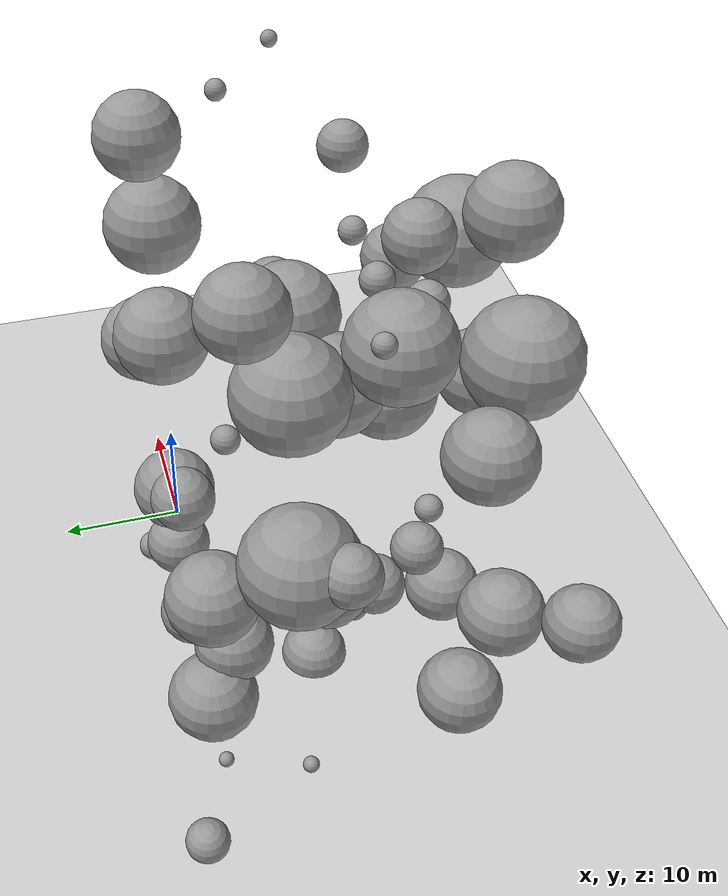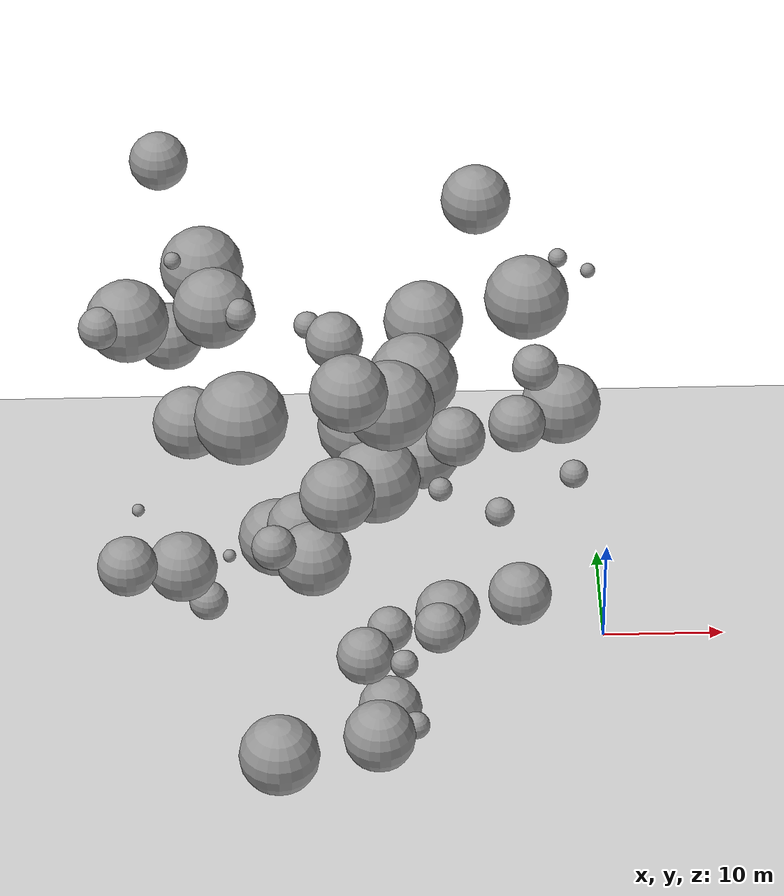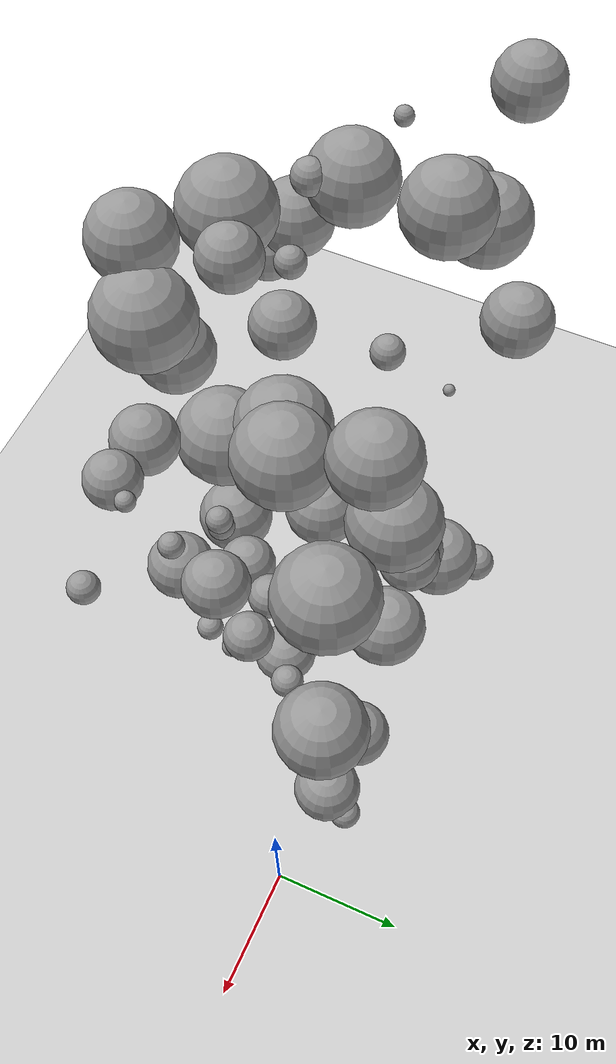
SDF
<sdf version="1.7">
 <world name="default">
  <model name="ground_plane">
   <static>1</static>
   <link name="link">
    <collision name="collision">
     <geometry><plane><normal>0 0 1</normal><size>100 100</size></plane></geometry>
     <surface>
      <contact><collide_bitmask>65535</collide_bitmask></contact>
      <friction><ode><mu>100</mu><mu2>50</mu2></ode></friction>
     </surface>
    </collision>
    <visual name="visual">
     <cast_shadows>0</cast_shadows>
     <geometry><plane><normal>0 0 1</normal><size>100 100</size></plane></geometry>
     <material>
      <script><uri>file://media/materials/scripts/gazebo.material</uri><name>Gazebo/Grey</name></script>
     </material>
    </visual>
   </link>
  </model>
  <model name="sphere_3">
   <static>1</static>
   <pose>-4 2 24 0 0 0</pose>
   <link name="link">
    <inertial>
     <mass>13485.373694115648</mass>
     <inertia>
      <ixx>54589.09502546419</ixx>
      <iyy>54589.09502546419</iyy>
      <izz>54589.09502546419</izz>
      <ixy>0</ixy>
      <ixz>0</ixz>
      <iyz>0</iyz>
     </inertia>
    </inertial>
    <collision name="collision">
     <geometry><sphere><radius>3.1812035528028293</radius></sphere></geometry>
    </collision>
    <visual name="visual">
     <geometry><sphere><radius>3.1812035528028293</radius></sphere></geometry>
     <material>
      <script><uri>file://media/materials/scripts/gazebo.material</uri><name>Gazebo/Grey</name></script>
     </material>
    </visual>
   </link>
  </model>
  <model name="sphere_6">
   <static>1</static>
   <pose>-16 -6 34 0 0 0</pose>
   <link name="link">
    <inertial>
     <mass>17364.775495447677</mass>
     <inertia>
      <ixx>83198.63603074141</ixx>
      <iyy>83198.63603074141</iyy>
      <izz>83198.63603074141</izz>
      <ixy>0</ixy>
      <ixz>0</ixz>
      <iyz>0</iyz>
     </inertia>
    </inertial>
    <collision name="collision">
     <geometry><sphere><radius>3.460935624013823</radius></sphere></geometry>
    </collision>
    <visual name="visual">
     <geometry><sphere><radius>3.460935624013823</radius></sphere></geometry>
     <material>
      <script><uri>file://media/materials/scripts/gazebo.material</uri><name>Gazebo/Grey</name></script>
     </material>
    </visual>
   </link>
  </model>
  <model name="sphere_7">
   <static>1</static>
   <pose>-14 -10 26 0 0 0</pose>
   <link name="link">
    <inertial>
     <mass>341.6740746308729</mass>
     <inertia>
      <ixx>119.31296269159577</ixx>
      <iyy>119.31296269159577</iyy>
      <izz>119.31296269159577</izz>
      <ixy>0</ixy>
      <ixz>0</ixz>
      <iyz>0</iyz>
     </inertia>
    </inertial>
    <collision name="collision">
     <geometry><sphere><radius>0.9343461617193105</radius></sphere></geometry>
    </collision>
    <visual name="visual">
     <geometry><sphere><radius>0.9343461617193105</radius></sphere></geometry>
     <material>
      <script><uri>file://media/materials/scripts/gazebo.material</uri><name>Gazebo/Grey</name></script>
     </material>
    </visual>
   </link>
  </model>
  <model name="sphere_9">
   <static>1</static>
   <pose>-4 -14 31 0 0 0</pose>
   <link name="link">
    <inertial>
     <mass>518.8254719904191</mass>
     <inertia>
      <ixx>239.3516366783105</ixx>
      <iyy>239.3516366783105</iyy>
      <izz>239.3516366783105</izz>
      <ixy>0</ixy>
      <ixz>0</ixz>
      <iyz>0</iyz>
     </inertia>
    </inertial>
    <collision name="collision">
     <geometry><sphere><radius>1.0739339211712031</radius></sphere></geometry>
    </collision>
    <visual name="visual">
     <geometry><sphere><radius>1.0739339211712031</radius></sphere></geometry>
     <material>
      <script><uri>file://media/materials/scripts/gazebo.material</uri><name>Gazebo/Grey</name></script>
     </material>
    </visual>
   </link>
  </model>
  <model name="sphere_10">
   <static>1</static>
   <pose>-7 1 36 0 0 0</pose>
   <link name="link">
    <inertial>
     <mass>15034.051911871826</mass>
     <inertia>
      <ixx>65432.62261102709</ixx>
      <iyy>65432.62261102709</iyy>
      <izz>65432.62261102709</izz>
      <ixy>0</ixy>
      <ixz>0</ixz>
      <iyz>0</iyz>
     </inertia>
    </inertial>
    <collision name="collision">
     <geometry><sphere><radius>3.2985961321861437</radius></sphere></geometry>
    </collision>
    <visual name="visual">
     <geometry><sphere><radius>3.2985961321861437</radius></sphere></geometry>
     <material>
      <script><uri>file://media/materials/scripts/gazebo.material</uri><name>Gazebo/Grey</name></script>
     </material>
    </visual>
   </link>
  </model>
  <model name="sphere_27">
   <static>1</static>
   <pose>-29 -16 39 0 0 0</pose>
   <link name="link">
    <inertial>
     <mass>17865.77479721656</mass>
     <inertia>
      <ixx>87237.66055250104</ixx>
      <iyy>87237.66055250104</iyy>
      <izz>87237.66055250104</izz>
      <ixy>0</ixy>
      <ixz>0</ixz>
      <iyz>0</iyz>
     </inertia>
    </inertial>
    <collision name="collision">
     <geometry><sphere><radius>3.493904917503813</radius></sphere></geometry>
    </collision>
    <visual name="visual">
     <geometry><sphere><radius>3.493904917503813</radius></sphere></geometry>
     <material>
      <script><uri>file://media/materials/scripts/gazebo.material</uri><name>Gazebo/Grey</name></script>
     </material>
    </visual>
   </link>
  </model>
  <model name="sphere_42">
   <static>1</static>
   <pose>-27 2 10 0 0 0</pose>
   <link name="link">
    <inertial>
     <mass>13778.366554385564</mass>
     <inertia>
      <ixx>56580.112817841626</ixx>
      <iyy>56580.112817841626</iyy>
      <izz>56580.112817841626</izz>
      <ixy>0</ixy>
      <ixz>0</ixz>
      <iyz>0</iyz>
     </inertia>
    </inertial>
    <collision name="collision">
     <geometry><sphere><radius>3.2040777173975967</radius></sphere></geometry>
    </collision>
    <visual name="visual">
     <geometry><sphere><radius>3.2040777173975967</radius></sphere></geometry>
     <material>
      <script><uri>file://media/materials/scripts/gazebo.material</uri><name>Gazebo/Grey</name></script>
     </material>
    </visual>
   </link>
  </model>
  <model name="sphere_60">
   <static>1</static>
   <pose>-31 -5 28 0 0 0</pose>
   <link name="link">
    <inertial>
     <mass>951.9786147179389</mass>
     <inertia>
      <ixx>658.2328803923649</ixx>
      <iyy>658.2328803923649</iyy>
      <izz>658.2328803923649</izz>
      <ixy>0</ixy>
      <ixz>0</ixz>
      <iyz>0</iyz>
     </inertia>
    </inertial>
    <collision name="collision">
     <geometry><sphere><radius>1.3147591271384855</radius></sphere></geometry>
    </collision>
    <visual name="visual">
     <geometry><sphere><radius>1.3147591271384855</radius></sphere></geometry>
     <material>
      <script><uri>file://media/materials/scripts/gazebo.material</uri><name>Gazebo/Grey</name></script>
     </material>
    </visual>
   </link>
  </model>
  <model name="sphere_65">
   <static>1</static>
   <pose>-40 -3 37 0 0 0</pose>
   <link name="link">
    <inertial>
     <mass>1894.5218783479238</mass>
     <inertia>
      <ixx>2072.5274597550997</ixx>
      <iyy>2072.5274597550997</iyy>
      <izz>2072.5274597550997</izz>
      <ixy>0</ixy>
      <ixz>0</ixz>
      <iyz>0</iyz>
     </inertia>
    </inertial>
    <collision name="collision">
     <geometry><sphere><radius>1.6537518329684593</radius></sphere></geometry>
    </collision>
    <visual name="visual">
     <geometry><sphere><radius>1.6537518329684593</radius></sphere></geometry>
     <material>
      <script><uri>file://media/materials/scripts/gazebo.material</uri><name>Gazebo/Grey</name></script>
     </material>
    </visual>
   </link>
  </model>
  <model name="sphere_68">
   <static>1</static>
   <pose>-17 -17 14 0 0 0</pose>
   <link name="link">
    <inertial>
     <mass>542.3213156279331</mass>
     <inertia>
      <ixx>257.6887007942612</ixx>
      <iyy>257.6887007942612</iyy>
      <izz>257.6887007942612</izz>
      <ixy>0</ixy>
      <ixz>0</ixz>
      <iyz>0</iyz>
     </inertia>
    </inertial>
    <collision name="collision">
     <geometry><sphere><radius>1.089906782111546</radius></sphere></geometry>
    </collision>
    <visual name="visual">
     <geometry><sphere><radius>1.089906782111546</radius></sphere></geometry>
     <material>
      <script><uri>file://media/materials/scripts/gazebo.material</uri><name>Gazebo/Grey</name></script>
     </material>
    </visual>
   </link>
  </model>
  <model name="sphere_74">
   <static>1</static>
   <pose>-13 1 2 0 0 0</pose>
   <link name="link">
    <inertial>
     <mass>8404.9842161421</mass>
     <inertia>
      <ixx>24825.37145676448</ixx>
      <iyy>24825.37145676448</iyy>
      <izz>24825.37145676448</izz>
      <ixy>0</ixy>
      <ixz>0</ixz>
      <iyz>0</iyz>
     </inertia>
    </inertial>
    <collision name="collision">
     <geometry><sphere><radius>2.7173740953435903</radius></sphere></geometry>
    </collision>
    <visual name="visual">
     <geometry><sphere><radius>2.7173740953435903</radius></sphere></geometry>
     <material>
      <script><uri>file://media/materials/scripts/gazebo.material</uri><name>Gazebo/Grey</name></script>
     </material>
    </visual>
   </link>
  </model>
  <model name="sphere_80">
   <static>1</static>
   <pose>-3 -8 46 0 0 0</pose>
   <link name="link">
    <inertial>
     <mass>69.99975427377015</mass>
     <inertia>
      <ixx>8.494968593391015</ixx>
      <iyy>8.494968593391015</iyy>
      <izz>8.494968593391015</izz>
      <ixy>0</ixy>
      <ixz>0</ixz>
      <iyz>0</iyz>
     </inertia>
    </inertial>
    <collision name="collision">
     <geometry><sphere><radius>0.5508110388333418</radius></sphere></geometry>
    </collision>
    <visual name="visual">
     <geometry><sphere><radius>0.5508110388333418</radius></sphere></geometry>
     <material>
      <script><uri>file://media/materials/scripts/gazebo.material</uri><name>Gazebo/Grey</name></script>
     </material>
    </visual>
   </link>
  </model>
  <model name="sphere_86">
   <static>1</static>
   <pose>-31 2 8 0 0 0</pose>
   <link name="link">
    <inertial>
     <mass>63.89077766509573</mass>
     <inertia>
      <ixx>7.2956592601255315</ixx>
      <iyy>7.2956592601255315</iyy>
      <izz>7.2956592601255315</izz>
      <ixy>0</ixy>
      <ixz>0</ixz>
      <iyz>0</iyz>
     </inertia>
    </inertial>
    <collision name="collision">
     <geometry><sphere><radius>0.534297556873202</radius></sphere></geometry>
    </collision>
    <visual name="visual">
     <geometry><sphere><radius>0.534297556873202</radius></sphere></geometry>
     <material>
      <script><uri>file://media/materials/scripts/gazebo.material</uri><name>Gazebo/Grey</name></script>
     </material>
    </visual>
   </link>
  </model>
  <model name="sphere_97">
   <static>1</static>
   <pose>-21 -18 43 0 0 0</pose>
   <link name="link">
    <inertial>
     <mass>10201.690682062408</mass>
     <inertia>
      <ixx>34286.34342741288</ixx>
      <iyy>34286.34342741288</iyy>
      <izz>34286.34342741288</izz>
      <ixy>0</ixy>
      <ixz>0</ixz>
      <iyz>0</iyz>
     </inertia>
    </inertial>
    <collision name="collision">
     <geometry><sphere><radius>2.8986415555667118</radius></sphere></geometry>
    </collision>
    <visual name="visual">
     <geometry><sphere><radius>2.8986415555667118</radius></sphere></geometry>
     <material>
      <script><uri>file://media/materials/scripts/gazebo.material</uri><name>Gazebo/Grey</name></script>
     </material>
    </visual>
   </link>
  </model>
  <model name="sphere_108">
   <static>1</static>
   <pose>-27 -17 4 0 0 0</pose>
   <link name="link">
    <inertial>
     <mass>14603.903131116624</mass>
     <inertia>
      <ixx>62342.25268442022</ixx>
      <iyy>62342.25268442022</iyy>
      <izz>62342.25268442022</izz>
      <ixy>0</ixy>
      <ixz>0</ixz>
      <iyz>0</iyz>
     </inertia>
    </inertial>
    <collision name="collision">
     <geometry><sphere><radius>3.266831827411993</radius></sphere></geometry>
    </collision>
    <visual name="visual">
     <geometry><sphere><radius>3.266831827411993</radius></sphere></geometry>
     <material>
      <script><uri>file://media/materials/scripts/gazebo.material</uri><name>Gazebo/Grey</name></script>
     </material>
    </visual>
   </link>
  </model>
  <model name="sphere_109">
   <static>1</static>
   <pose>-22 -17 32 0 0 0</pose>
   <link name="link">
    <inertial>
     <mass>9811.57003619049</mass>
     <inertia>
      <ixx>32129.090525636348</ixx>
      <iyy>32129.090525636348</iyy>
      <izz>32129.090525636348</izz>
      <ixy>0</ixy>
      <ixz>0</ixz>
      <iyz>0</iyz>
     </inertia>
    </inertial>
    <collision name="collision">
     <geometry><sphere><radius>2.8612115289157787</radius></sphere></geometry>
    </collision>
    <visual name="visual">
     <geometry><sphere><radius>2.8612115289157787</radius></sphere></geometry>
     <material>
      <script><uri>file://media/materials/scripts/gazebo.material</uri><name>Gazebo/Grey</name></script>
     </material>
    </visual>
   </link>
  </model>
  <model name="sphere_119">
   <static>1</static>
   <pose>-27 -12 22 0 0 0</pose>
   <link name="link">
    <inertial>
     <mass>2251.98447438753</mass>
     <inertia>
      <ixx>2764.457421428593</ixx>
      <iyy>2764.457421428593</iyy>
      <izz>2764.457421428593</izz>
      <ixy>0</ixy>
      <ixz>0</ixz>
      <iyz>0</iyz>
     </inertia>
    </inertial>
    <collision name="collision">
     <geometry><sphere><radius>1.7518312165143812</radius></sphere></geometry>
    </collision>
    <visual name="visual">
     <geometry><sphere><radius>1.7518312165143812</radius></sphere></geometry>
     <material>
      <script><uri>file://media/materials/scripts/gazebo.material</uri><name>Gazebo/Grey</name></script>
     </material>
    </visual>
   </link>
  </model>
  <model name="sphere_121">
   <static>1</static>
   <pose>-18 -12 31 0 0 0</pose>
   <link name="link">
    <inertial>
     <mass>142.87307219202688</mass>
     <inertia>
      <ixx>27.89875935727935</ixx>
      <iyy>27.89875935727935</iyy>
      <izz>27.89875935727935</izz>
      <ixy>0</ixy>
      <ixz>0</ixz>
      <iyz>0</iyz>
     </inertia>
    </inertial>
    <collision name="collision">
     <geometry><sphere><radius>0.6986943929635403</radius></sphere></geometry>
    </collision>
    <visual name="visual">
     <geometry><sphere><radius>0.6986943929635403</radius></sphere></geometry>
     <material>
      <script><uri>file://media/materials/scripts/gazebo.material</uri><name>Gazebo/Grey</name></script>
     </material>
    </visual>
   </link>
  </model>
  <model name="sphere_128">
   <static>1</static>
   <pose>-15 2 33 0 0 0</pose>
   <link name="link">
    <inertial>
     <mass>12882.707888361307</mass>
     <inertia>
      <ixx>50583.96296050279</ixx>
      <iyy>50583.96296050279</iyy>
      <izz>50583.96296050279</izz>
      <ixy>0</ixy>
      <ixz>0</ixz>
      <iyz>0</iyz>
     </inertia>
    </inertial>
    <collision name="collision">
     <geometry><sphere><radius>3.133089852742928</radius></sphere></geometry>
    </collision>
    <visual name="visual">
     <geometry><sphere><radius>3.133089852742928</radius></sphere></geometry>
     <material>
      <script><uri>file://media/materials/scripts/gazebo.material</uri><name>Gazebo/Grey</name></script>
     </material>
    </visual>
   </link>
  </model>
  <model name="sphere_135">
   <static>1</static>
   <pose>-7 -12 40 0 0 0</pose>
   <link name="link">
    <inertial>
     <mass>2175.374166318256</mass>
     <inertia>
      <ixx>2609.501373154515</ixx>
      <iyy>2609.501373154515</iyy>
      <izz>2609.501373154515</izz>
      <ixy>0</ixy>
      <ixz>0</ixz>
      <iyz>0</iyz>
     </inertia>
    </inertial>
    <collision name="collision">
     <geometry><sphere><radius>1.7317364007172698</radius></sphere></geometry>
    </collision>
    <visual name="visual">
     <geometry><sphere><radius>1.7317364007172698</radius></sphere></geometry>
     <material>
      <script><uri>file://media/materials/scripts/gazebo.material</uri><name>Gazebo/Grey</name></script>
     </material>
    </visual>
   </link>
  </model>
  <model name="sphere_170">
   <static>1</static>
   <pose>-19 -18 7 0 0 0</pose>
   <link name="link">
    <inertial>
     <mass>10094.659931993976</mass>
     <inertia>
      <ixx>33688.9188335302</ixx>
      <iyy>33688.9188335302</iyy>
      <izz>33688.9188335302</izz>
      <ixy>0</ixy>
      <ixz>0</ixz>
      <iyz>0</iyz>
     </inertia>
    </inertial>
    <collision name="collision">
     <geometry><sphere><radius>2.888468891404258</radius></sphere></geometry>
    </collision>
    <visual name="visual">
     <geometry><sphere><radius>2.888468891404258</radius></sphere></geometry>
     <material>
      <script><uri>file://media/materials/scripts/gazebo.material</uri><name>Gazebo/Grey</name></script>
     </material>
    </visual>
   </link>
  </model>
  <model name="sphere_174">
   <static>1</static>
   <pose>-15 2 19 0 0 0</pose>
   <link name="link">
    <inertial>
     <mass>10208.062239806051</mass>
     <inertia>
      <ixx>34322.04059769395</ixx>
      <iyy>34322.04059769395</iyy>
      <izz>34322.04059769395</izz>
      <ixy>0</ixy>
      <ixz>0</ixz>
      <iyz>0</iyz>
     </inertia>
    </inertial>
    <collision name="collision">
     <geometry><sphere><radius>2.8992448875369954</radius></sphere></geometry>
    </collision>
    <visual name="visual">
     <geometry><sphere><radius>2.8992448875369954</radius></sphere></geometry>
     <material>
      <script><uri>file://media/materials/scripts/gazebo.material</uri><name>Gazebo/Grey</name></script>
     </material>
    </visual>
   </link>
  </model>
  <model name="sphere_210">
   <static>1</static>
   <pose>-7 1 4 0 0 0</pose>
   <link name="link">
    <inertial>
     <mass>7696.017773560213</mass>
     <inertia>
      <ixx>21434.38473636527</ixx>
      <iyy>21434.38473636527</iyy>
      <izz>21434.38473636527</izz>
      <ixy>0</ixy>
      <ixz>0</ixz>
      <iyz>0</iyz>
     </inertia>
    </inertial>
    <collision name="collision">
     <geometry><sphere><radius>2.638714990147555</radius></sphere></geometry>
    </collision>
    <visual name="visual">
     <geometry><sphere><radius>2.638714990147555</radius></sphere></geometry>
     <material>
      <script><uri>file://media/materials/scripts/gazebo.material</uri><name>Gazebo/Grey</name></script>
     </material>
    </visual>
   </link>
  </model>
  <model name="sphere_211">
   <static>1</static>
   <pose>-33 -13 36 0 0 0</pose>
   <link name="link">
    <inertial>
     <mass>8704.785502364897</mass>
     <inertia>
      <ixx>26318.696448991832</ixx>
      <iyy>26318.696448991832</iyy>
      <izz>26318.696448991832</izz>
      <ixy>0</ixy>
      <ixz>0</ixz>
      <iyz>0</iyz>
     </inertia>
    </inertial>
    <collision name="collision">
     <geometry><sphere><radius>2.7493064749802456</radius></sphere></geometry>
    </collision>
    <visual name="visual">
     <geometry><sphere><radius>2.7493064749802456</radius></sphere></geometry>
     <material>
      <script><uri>file://media/materials/scripts/gazebo.material</uri><name>Gazebo/Grey</name></script>
     </material>
    </visual>
   </link>
  </model>
  <model name="sphere_235">
   <static>1</static>
   <pose>-35 3 31 0 0 0</pose>
   <link name="link">
    <inertial>
     <mass>7735.0625758179785</mass>
     <inertia>
      <ixx>21615.932268939836</ixx>
      <iyy>21615.932268939836</iyy>
      <izz>21615.932268939836</izz>
      <ixy>0</ixy>
      <ixz>0</ixz>
      <iyz>0</iyz>
     </inertia>
    </inertial>
    <collision name="collision">
     <geometry><sphere><radius>2.643169863822753</radius></sphere></geometry>
    </collision>
    <visual name="visual">
     <geometry><sphere><radius>2.643169863822753</radius></sphere></geometry>
     <material>
      <script><uri>file://media/materials/scripts/gazebo.material</uri><name>Gazebo/Grey</name></script>
     </material>
    </visual>
   </link>
  </model>
  <model name="sphere_242">
   <static>1</static>
   <pose>-19 -12 29 0 0 0</pose>
   <link name="link">
    <inertial>
     <mass>16641.84130487538</mass>
     <inertia>
      <ixx>77506.2180162214</ixx>
      <iyy>77506.2180162214</iyy>
      <izz>77506.2180162214</izz>
      <ixy>0</ixy>
      <ixz>0</ixz>
      <iyz>0</iyz>
     </inertia>
    </inertial>
    <collision name="collision">
     <geometry><sphere><radius>3.412224437842082</radius></sphere></geometry>
    </collision>
    <visual name="visual">
     <geometry><sphere><radius>3.412224437842082</radius></sphere></geometry>
     <material>
      <script><uri>file://media/materials/scripts/gazebo.material</uri><name>Gazebo/Grey</name></script>
     </material>
    </visual>
   </link>
  </model>
  <model name="sphere_247">
   <static>1</static>
   <pose>-6 3 3 0 0 0</pose>
   <link name="link">
    <inertial>
     <mass>766.6368219318737</mass>
     <inertia>
      <ixx>458.8284897517589</ixx>
      <iyy>458.8284897517589</iyy>
      <izz>458.8284897517589</izz>
      <ixy>0</ixy>
      <ixz>0</ixz>
      <iyz>0</iyz>
     </inertia>
    </inertial>
    <collision name="collision">
     <geometry><sphere><radius>1.2232081193794444</radius></sphere></geometry>
    </collision>
    <visual name="visual">
     <geometry><sphere><radius>1.2232081193794444</radius></sphere></geometry>
     <material>
      <script><uri>file://media/materials/scripts/gazebo.material</uri><name>Gazebo/Grey</name></script>
     </material>
    </visual>
   </link>
  </model>
  <model name="sphere_257">
   <static>1</static>
   <pose>-18 -9 10 0 0 0</pose>
   <link name="link">
    <inertial>
     <mass>2537.3151144914955</mass>
     <inertia>
      <ixx>3372.548956251308</ixx>
      <iyy>3372.548956251308</iyy>
      <izz>3372.548956251308</izz>
      <ixy>0</ixy>
      <ixz>0</ixz>
      <iyz>0</iyz>
     </inertia>
    </inertial>
    <collision name="collision">
     <geometry><sphere><radius>1.8228961697580814</radius></sphere></geometry>
    </collision>
    <visual name="visual">
     <geometry><sphere><radius>1.8228961697580814</radius></sphere></geometry>
     <material>
      <script><uri>file://media/materials/scripts/gazebo.material</uri><name>Gazebo/Grey</name></script>
     </material>
    </visual>
   </link>
  </model>
  <model name="sphere_262">
   <static>1</static>
   <pose>-33 4 1 0 0 0</pose>
   <link name="link">
    <inertial>
     <mass>1860.3654916350933</mass>
     <inertia>
      <ixx>2010.6263827957016</ixx>
      <iyy>2010.6263827957016</iyy>
      <izz>2010.6263827957016</izz>
      <ixy>0</ixy>
      <ixz>0</ixz>
      <iyz>0</iyz>
     </inertia>
    </inertial>
    <collision name="collision">
     <geometry><sphere><radius>1.6437529878807737</radius></sphere></geometry>
    </collision>
    <visual name="visual">
     <geometry><sphere><radius>1.6437529878807737</radius></sphere></geometry>
     <material>
      <script><uri>file://media/materials/scripts/gazebo.material</uri><name>Gazebo/Grey</name></script>
     </material>
    </visual>
   </link>
  </model>
  <model name="sphere_268">
   <static>1</static>
   <pose>-38 -2 17 0 0 0</pose>
   <link name="link">
    <inertial>
     <mass>55.05962808051059</mass>
     <inertia>
      <ixx>5.6936361150561625</ixx>
      <iyy>5.6936361150561625</iyy>
      <izz>5.6936361150561625</izz>
      <ixy>0</ixy>
      <ixz>0</ixz>
      <iyz>0</iyz>
     </inertia>
    </inertial>
    <collision name="collision">
     <geometry><sphere><radius>0.5084499645497976</radius></sphere></geometry>
    </collision>
    <visual name="visual">
     <geometry><sphere><radius>0.5084499645497976</radius></sphere></geometry>
     <material>
      <script><uri>file://media/materials/scripts/gazebo.material</uri><name>Gazebo/Grey</name></script>
     </material>
    </visual>
   </link>
  </model>
  <model name="sphere_278">
   <static>1</static>
   <pose>-32 -2 42 0 0 0</pose>
   <link name="link">
    <inertial>
     <mass>13425.617549877617</mass>
     <inertia>
      <ixx>54186.53378733185</ixx>
      <iyy>54186.53378733185</iyy>
      <izz>54186.53378733185</izz>
      <ixy>0</ixy>
      <ixz>0</ixz>
      <iyz>0</iyz>
     </inertia>
    </inertial>
    <collision name="collision">
     <geometry><sphere><radius>3.1764977646419967</radius></sphere></geometry>
    </collision>
    <visual name="visual">
     <geometry><sphere><radius>3.1764977646419967</radius></sphere></geometry>
     <material>
      <script><uri>file://media/materials/scripts/gazebo.material</uri><name>Gazebo/Grey</name></script>
     </material>
    </visual>
   </link>
  </model>
  <model name="sphere_290">
   <static>1</static>
   <pose>-29 -10 44 0 0 0</pose>
   <link name="link">
    <inertial>
     <mass>731.48726127176</mass>
     <inertia>
      <ixx>424.3056981142924</ixx>
      <iyy>424.3056981142924</iyy>
      <izz>424.3056981142924</izz>
      <ixy>0</ixy>
      <ixz>0</ixz>
      <iyz>0</iyz>
     </inertia>
    </inertial>
    <collision name="collision">
     <geometry><sphere><radius>1.2042206013670098</radius></sphere></geometry>
    </collision>
    <visual name="visual">
     <geometry><sphere><radius>1.2042206013670098</radius></sphere></geometry>
     <material>
      <script><uri>file://media/materials/scripts/gazebo.material</uri><name>Gazebo/Grey</name></script>
     </material>
    </visual>
   </link>
  </model>
  <model name="sphere_294">
   <static>1</static>
   <pose>-34 -15 23 0 0 0</pose>
   <link name="link">
    <inertial>
     <mass>8359.534457065392</mass>
     <inertia>
      <ixx>24602.037275208553</ixx>
      <iyy>24602.037275208553</iyy>
      <izz>24602.037275208553</izz>
      <ixy>0</ixy>
      <ixz>0</ixz>
      <iyz>0</iyz>
     </inertia>
    </inertial>
    <collision name="collision">
     <geometry><sphere><radius>2.7124671940346454</radius></sphere></geometry>
    </collision>
    <visual name="visual">
     <geometry><sphere><radius>2.7124671940346454</radius></sphere></geometry>
     <material>
      <script><uri>file://media/materials/scripts/gazebo.material</uri><name>Gazebo/Grey</name></script>
     </material>
    </visual>
   </link>
  </model>
  <model name="sphere_317">
   <static>1</static>
   <pose>-25 0 13 0 0 0</pose>
   <link name="link">
    <inertial>
     <mass>9314.668197519732</mass>
     <inertia>
      <ixx>29463.19910335161</ixx>
      <iyy>29463.19910335161</iyy>
      <izz>29463.19910335161</izz>
      <ixy>0</ixy>
      <ixz>0</ixz>
      <iyz>0</iyz>
     </inertia>
    </inertial>
    <collision name="collision">
     <geometry><sphere><radius>2.8120708595740838</radius></sphere></geometry>
    </collision>
    <visual name="visual">
     <geometry><sphere><radius>2.8120708595740838</radius></sphere></geometry>
     <material>
      <script><uri>file://media/materials/scripts/gazebo.material</uri><name>Gazebo/Grey</name></script>
     </material>
    </visual>
   </link>
  </model>
  <model name="sphere_327">
   <static>1</static>
   <pose>-35 1 50 0 0 0</pose>
   <link name="link">
    <inertial>
     <mass>4505.276880118718</mass>
     <inertia>
      <ixx>8780.853456918292</ixx>
      <iyy>8780.853456918292</iyy>
      <izz>8780.853456918292</izz>
      <ixy>0</ixy>
      <ixz>0</ixz>
      <iyz>0</iyz>
     </inertia>
    </inertial>
    <collision name="collision">
     <geometry><sphere><radius>2.2073826553639893</radius></sphere></geometry>
    </collision>
    <visual name="visual">
     <geometry><sphere><radius>2.2073826553639893</radius></sphere></geometry>
     <material>
      <script><uri>file://media/materials/scripts/gazebo.material</uri><name>Gazebo/Grey</name></script>
     </material>
    </visual>
   </link>
  </model>
  <model name="sphere_334">
   <static>1</static>
   <pose>-16 -14 4 0 0 0</pose>
   <link name="link">
    <inertial>
     <mass>573.1617303995807</mass>
     <inertia>
      <ixx>282.5722829645345</ixx>
      <iyy>282.5722829645345</iyy>
      <izz>282.5722829645345</izz>
      <ixy>0</ixy>
      <ixz>0</ixz>
      <iyz>0</iyz>
     </inertia>
    </inertial>
    <collision name="collision">
     <geometry><sphere><radius>1.1101871390678184</radius></sphere></geometry>
    </collision>
    <visual name="visual">
     <geometry><sphere><radius>1.1101871390678184</radius></sphere></geometry>
     <material>
      <script><uri>file://media/materials/scripts/gazebo.material</uri><name>Gazebo/Grey</name></script>
     </material>
    </visual>
   </link>
  </model>
  <model name="sphere_336">
   <static>1</static>
   <pose>-16 -12 2 0 0 0</pose>
   <link name="link">
    <inertial>
     <mass>384.32987505405015</mass>
     <inertia>
      <ixx>145.1580614467685</ixx>
      <iyy>145.1580614467685</iyy>
      <izz>145.1580614467685</izz>
      <ixy>0</ixy>
      <ixz>0</ixz>
      <iyz>0</iyz>
     </inertia>
    </inertial>
    <collision name="collision">
     <geometry><sphere><radius>0.9717141161687373</radius></sphere></geometry>
    </collision>
    <visual name="visual">
     <geometry><sphere><radius>0.9717141161687373</radius></sphere></geometry>
     <material>
      <script><uri>file://media/materials/scripts/gazebo.material</uri><name>Gazebo/Grey</name></script>
     </material>
    </visual>
   </link>
  </model>
  <model name="sphere_339">
   <static>1</static>
   <pose>-14 -9 10 0 0 0</pose>
   <link name="link">
    <inertial>
     <mass>3579.0342130471345</mass>
     <inertia>
      <ixx>5983.344403691357</ixx>
      <iyy>5983.344403691357</iyy>
      <izz>5983.344403691357</izz>
      <ixy>0</ixy>
      <ixz>0</ixz>
      <iyz>0</iyz>
     </inertia>
    </inertial>
    <collision name="collision">
     <geometry><sphere><radius>2.0443680272531006</radius></sphere></geometry>
    </collision>
    <visual name="visual">
     <geometry><sphere><radius>2.0443680272531006</radius></sphere></geometry>
     <material>
      <script><uri>file://media/materials/scripts/gazebo.material</uri><name>Gazebo/Grey</name></script>
     </material>
    </visual>
   </link>
  </model>
  <model name="sphere_341">
   <static>1</static>
   <pose>-5 -4 44 0 0 0</pose>
   <link name="link">
    <inertial>
     <mass>150.79605606204805</mass>
     <inertia>
      <ixx>30.524663868634278</ixx>
      <iyy>30.524663868634278</iyy>
      <izz>30.524663868634278</izz>
      <ixy>0</ixy>
      <ixz>0</ixz>
      <iyz>0</iyz>
     </inertia>
    </inertial>
    <collision name="collision">
     <geometry><sphere><radius>0.7113780455651896</radius></sphere></geometry>
    </collision>
    <visual name="visual">
     <geometry><sphere><radius>0.7113780455651896</radius></sphere></geometry>
     <material>
      <script><uri>file://media/materials/scripts/gazebo.material</uri><name>Gazebo/Grey</name></script>
     </material>
    </visual>
   </link>
  </model>
  <model name="sphere_348">
   <static>1</static>
   <pose>-34 -6 46 0 0 0</pose>
   <link name="link">
    <inertial>
     <mass>111.08409119445892</mass>
     <inertia>
      <ixx>18.34090222443977</ixx>
      <iyy>18.34090222443977</iyy>
      <izz>18.34090222443977</izz>
      <ixy>0</ixy>
      <ixz>0</ixz>
      <iyz>0</iyz>
     </inertia>
    </inertial>
    <collision name="collision">
     <geometry><sphere><radius>0.6424723163791356</radius></sphere></geometry>
    </collision>
    <visual name="visual">
     <geometry><sphere><radius>0.6424723163791356</radius></sphere></geometry>
     <material>
      <script><uri>file://media/materials/scripts/gazebo.material</uri><name>Gazebo/Grey</name></script>
     </material>
    </visual>
   </link>
  </model>
  <model name="sphere_360">
   <static>1</static>
   <pose>-24 -7 16 0 0 0</pose>
   <link name="link">
    <inertial>
     <mass>11291.14270390256</mass>
     <inertia>
      <ixx>40603.556826544744</ixx>
      <iyy>40603.556826544744</iyy>
      <izz>40603.556826544744</izz>
      <ixy>0</ixy>
      <ixz>0</ixz>
      <iyz>0</iyz>
     </inertia>
    </inertial>
    <collision name="collision">
     <geometry><sphere><radius>2.998355306538181</radius></sphere></geometry>
    </collision>
    <visual name="visual">
     <geometry><sphere><radius>2.998355306538181</radius></sphere></geometry>
     <material>
      <script><uri>file://media/materials/scripts/gazebo.material</uri><name>Gazebo/Grey</name></script>
     </material>
    </visual>
   </link>
  </model>
  <model name="sphere_363">
   <static>1</static>
   <pose>-9 -3 17 0 0 0</pose>
   <link name="link">
    <inertial>
     <mass>676.072277666584</mass>
     <inertia>
      <ixx>372.09696857618866</ixx>
      <iyy>372.09696857618866</iyy>
      <izz>372.09696857618866</izz>
      <ixy>0</ixy>
      <ixz>0</ixz>
      <iyz>0</iyz>
     </inertia>
    </inertial>
    <collision name="collision">
     <geometry><sphere><radius>1.173009437467843</radius></sphere></geometry>
    </collision>
    <visual name="visual">
     <geometry><sphere><radius>1.173009437467843</radius></sphere></geometry>
     <material>
      <script><uri>file://media/materials/scripts/gazebo.material</uri><name>Gazebo/Grey</name></script>
     </material>
    </visual>
   </link>
  </model>
  <model name="sphere_368">
   <static>1</static>
   <pose>-31 -5 28 0 0 0</pose>
   <link name="link">
    <inertial>
     <mass>163.01602645978878</mass>
     <inertia>
      <ixx>34.75773144722917</ixx>
      <iyy>34.75773144722917</iyy>
      <izz>34.75773144722917</izz>
      <ixy>0</ixy>
      <ixz>0</ixz>
      <iyz>0</iyz>
     </inertia>
    </inertial>
    <collision name="collision">
     <geometry><sphere><radius>0.7300970010677691</radius></sphere></geometry>
    </collision>
    <visual name="visual">
     <geometry><sphere><radius>0.7300970010677691</radius></sphere></geometry>
     <material>
      <script><uri>file://media/materials/scripts/gazebo.material</uri><name>Gazebo/Grey</name></script>
     </material>
    </visual>
   </link>
  </model>
  <model name="sphere_375">
   <static>1</static>
   <pose>-8 -7 30 0 0 0</pose>
   <link name="link">
    <inertial>
     <mass>4551.27033285504</mass>
     <inertia>
      <ixx>8930.764527779755</ixx>
      <iyy>8930.764527779755</iyy>
      <izz>8930.764527779755</izz>
      <ixy>0</ixy>
      <ixz>0</ixz>
      <iyz>0</iyz>
     </inertia>
    </inertial>
    <collision name="collision">
     <geometry><sphere><radius>2.214868811082445</radius></sphere></geometry>
    </collision>
    <visual name="visual">
     <geometry><sphere><radius>2.214868811082445</radius></sphere></geometry>
     <material>
      <script><uri>file://media/materials/scripts/gazebo.material</uri><name>Gazebo/Grey</name></script>
     </material>
    </visual>
   </link>
  </model>
  <model name="sphere_380">
   <static>1</static>
   <pose>-18 -16 40 0 0 0</pose>
   <link name="link">
    <inertial>
     <mass>16244.473682353657</mass>
     <inertia>
      <ixx>74446.39287616078</ixx>
      <iyy>74446.39287616078</iyy>
      <izz>74446.39287616078</izz>
      <ixy>0</ixy>
      <ixz>0</ixz>
      <iyz>0</iyz>
     </inertia>
    </inertial>
    <collision name="collision">
     <geometry><sphere><radius>3.3848467593840157</radius></sphere></geometry>
    </collision>
    <visual name="visual">
     <geometry><sphere><radius>3.3848467593840157</radius></sphere></geometry>
     <material>
      <script><uri>file://media/materials/scripts/gazebo.material</uri><name>Gazebo/Grey</name></script>
     </material>
    </visual>
   </link>
  </model>
  <model name="sphere_381">
   <static>1</static>
   <pose>-13 -14 35 0 0 0</pose>
   <link name="link">
    <inertial>
     <mass>4728.638235926005</mass>
     <inertia>
      <ixx>9518.336797291635</ixx>
      <iyy>9518.336797291635</iyy>
      <izz>9518.336797291635</izz>
      <ixy>0</ixy>
      <ixz>0</ixz>
      <iyz>0</iyz>
     </inertia>
    </inertial>
    <collision name="collision">
     <geometry><sphere><radius>2.2432748813519194</radius></sphere></geometry>
    </collision>
    <visual name="visual">
     <geometry><sphere><radius>2.2432748813519194</radius></sphere></geometry>
     <material>
      <script><uri>file://media/materials/scripts/gazebo.material</uri><name>Gazebo/Grey</name></script>
     </material>
    </visual>
   </link>
  </model>
  <model name="sphere_384">
   <static>1</static>
   <pose>-38 -1 36 0 0 0</pose>
   <link name="link">
    <inertial>
     <mass>14187.941878216054</mass>
     <inertia>
      <ixx>59410.96222104397</ixx>
      <iyy>59410.96222104397</iyy>
      <izz>59410.96222104397</izz>
      <ixy>0</ixy>
      <ixz>0</ixz>
      <iyz>0</iyz>
     </inertia>
    </inertial>
    <collision name="collision">
     <geometry><sphere><radius>3.2355163377039475</radius></sphere></geometry>
    </collision>
    <visual name="visual">
     <geometry><sphere><radius>3.2355163377039475</radius></sphere></geometry>
     <material>
      <script><uri>file://media/materials/scripts/gazebo.material</uri><name>Gazebo/Grey</name></script>
     </material>
    </visual>
   </link>
  </model>
  <model name="sphere_386">
   <static>1</static>
   <pose>-18 -8 0 0 0 0</pose>
   <link name="link">
    <inertial>
     <mass>7638.650256510639</mass>
     <inertia>
      <ixx>21168.753943636064</ixx>
      <iyy>21168.753943636064</iyy>
      <izz>21168.753943636064</izz>
      <ixy>0</ixy>
      <ixz>0</ixz>
      <iyz>0</iyz>
     </inertia>
    </inertial>
    <collision name="collision">
     <geometry><sphere><radius>2.632142144014221</radius></sphere></geometry>
    </collision>
    <visual name="visual">
     <geometry><sphere><radius>2.632142144014221</radius></sphere></geometry>
     <material>
      <script><uri>file://media/materials/scripts/gazebo.material</uri><name>Gazebo/Grey</name></script>
     </material>
    </visual>
   </link>
  </model>
  <model name="sphere_410">
   <static>1</static>
   <pose>-20 -12 10 0 0 0</pose>
   <link name="link">
    <inertial>
     <mass>5189.296202315677</mass>
     <inertia>
      <ixx>11113.436003450375</ixx>
      <iyy>11113.436003450375</iyy>
      <izz>11113.436003450375</izz>
      <ixy>0</ixy>
      <ixz>0</ixz>
      <iyz>0</iyz>
     </inertia>
    </inertial>
    <collision name="collision">
     <geometry><sphere><radius>2.3138753018002003</radius></sphere></geometry>
    </collision>
    <visual name="visual">
     <geometry><sphere><radius>2.3138753018002003</radius></sphere></geometry>
     <material>
      <script><uri>file://media/materials/scripts/gazebo.material</uri><name>Gazebo/Grey</name></script>
     </material>
    </visual>
   </link>
  </model>
  <model name="sphere_414">
   <static>1</static>
   <pose>-38 -18 26 0 0 0</pose>
   <link name="link">
    <inertial>
     <mass>5086.98380268829</mass>
     <inertia>
      <ixx>10750.65297096588</ixx>
      <iyy>10750.65297096588</iyy>
      <izz>10750.65297096588</izz>
      <ixy>0</ixy>
      <ixz>0</ixz>
      <iyz>0</iyz>
     </inertia>
    </inertial>
    <collision name="collision">
     <geometry><sphere><radius>2.298567429537027</radius></sphere></geometry>
    </collision>
    <visual name="visual">
     <geometry><sphere><radius>2.298567429537027</radius></sphere></geometry>
     <material>
      <script><uri>file://media/materials/scripts/gazebo.material</uri><name>Gazebo/Grey</name></script>
     </material>
    </visual>
   </link>
  </model>
  <model name="sphere_444">
   <static>1</static>
   <pose>-31 -8 43 0 0 0</pose>
   <link name="link">
    <inertial>
     <mass>11899.232907598964</mass>
     <inertia>
      <ixx>44313.14022207469</ixx>
      <iyy>44313.14022207469</iyy>
      <izz>44313.14022207469</izz>
      <ixy>0</ixy>
      <ixz>0</ixz>
      <iyz>0</iyz>
     </inertia>
    </inertial>
    <collision name="collision">
     <geometry><sphere><radius>3.0512429241708556</radius></sphere></geometry>
    </collision>
    <visual name="visual">
     <geometry><sphere><radius>3.0512429241708556</radius></sphere></geometry>
     <material>
      <script><uri>file://media/materials/scripts/gazebo.material</uri><name>Gazebo/Grey</name></script>
     </material>
    </visual>
   </link>
  </model>
  <model name="sphere_454">
   <static>1</static>
   <pose>-11 2 45 0 0 0</pose>
   <link name="link">
    <inertial>
     <mass>7933.296049952338</mass>
     <inertia>
      <ixx>22547.082504225953</ixx>
      <iyy>22547.082504225953</iyy>
      <izz>22547.082504225953</izz>
      <ixy>0</ixy>
      <ixz>0</ixz>
      <iyz>0</iyz>
     </inertia>
    </inertial>
    <collision name="collision">
     <geometry><sphere><radius>2.6655593127113146</radius></sphere></geometry>
    </collision>
    <visual name="visual">
     <geometry><sphere><radius>2.6655593127113146</radius></sphere></geometry>
     <material>
      <script><uri>file://media/materials/scripts/gazebo.material</uri><name>Gazebo/Grey</name></script>
     </material>
    </visual>
   </link>
  </model>
  <model name="sphere_458">
   <static>1</static>
   <pose>-20 -8 31 0 0 0</pose>
   <link name="link">
    <inertial>
     <mass>17107.027986509973</mass>
     <inertia>
      <ixx>81150.62361491185</ixx>
      <iyy>81150.62361491185</iyy>
      <izz>81150.62361491185</izz>
      <ixy>0</ixy>
      <ixz>0</ixz>
      <iyz>0</iyz>
     </inertia>
    </inertial>
    <collision name="collision">
     <geometry><sphere><radius>3.4437264969143206</radius></sphere></geometry>
    </collision>
    <visual name="visual">
     <geometry><sphere><radius>3.4437264969143206</radius></sphere></geometry>
     <material>
      <script><uri>file://media/materials/scripts/gazebo.material</uri><name>Gazebo/Grey</name></script>
     </material>
    </visual>
   </link>
  </model>
  <model name="sphere_471">
   <static>1</static>
   <pose>-19 2 22 0 0 0</pose>
   <link name="link">
    <inertial>
     <mass>4503.615721677044</mass>
     <inertia>
      <ixx>8775.458081515679</ixx>
      <iyy>8775.458081515679</iyy>
      <izz>8775.458081515679</izz>
      <ixy>0</ixy>
      <ixz>0</ixz>
      <iyz>0</iyz>
     </inertia>
    </inertial>
    <collision name="collision">
     <geometry><sphere><radius>2.2071113244195457</radius></sphere></geometry>
    </collision>
    <visual name="visual">
     <geometry><sphere><radius>2.2071113244195457</radius></sphere></geometry>
     <material>
      <script><uri>file://media/materials/scripts/gazebo.material</uri><name>Gazebo/Grey</name></script>
     </material>
    </visual>
   </link>
  </model>
  <model name="sphere_484">
   <static>1</static>
   <pose>-24 -9 42 0 0 0</pose>
   <link name="link">
    <inertial>
     <mass>451.88210897677595</mass>
     <inertia>
      <ixx>190.12657733957965</ixx>
      <iyy>190.12657733957965</iyy>
      <izz>190.12657733957965</izz>
      <ixy>0</ixy>
      <ixz>0</ixz>
      <iyz>0</iyz>
     </inertia>
    </inertial>
    <collision name="collision">
     <geometry><sphere><radius>1.0256019688539495</radius></sphere></geometry>
    </collision>
    <visual name="visual">
     <geometry><sphere><radius>1.0256019688539495</radius></sphere></geometry>
     <material>
      <script><uri>file://media/materials/scripts/gazebo.material</uri><name>Gazebo/Grey</name></script>
     </material>
    </visual>
   </link>
  </model>
  <model name="sphere_494">
   <static>1</static>
   <pose>-22 -12 43 0 0 0</pose>
   <link name="link">
    <inertial>
     <mass>4087.795071312788</mass>
     <inertia>
      <ixx>7467.0566229583455</ixx>
      <iyy>7467.0566229583455</iyy>
      <izz>7467.0566229583455</izz>
      <ixy>0</ixy>
      <ixz>0</ixz>
      <iyz>0</iyz>
     </inertia>
    </inertial>
    <collision name="collision">
     <geometry><sphere><radius>2.136978578819436</radius></sphere></geometry>
    </collision>
    <visual name="visual">
     <geometry><sphere><radius>2.136978578819436</radius></sphere></geometry>
     <material>
      <script><uri>file://media/materials/scripts/gazebo.material</uri><name>Gazebo/Grey</name></script>
     </material>
    </visual>
   </link>
  </model>
 </world>
</sdf>
